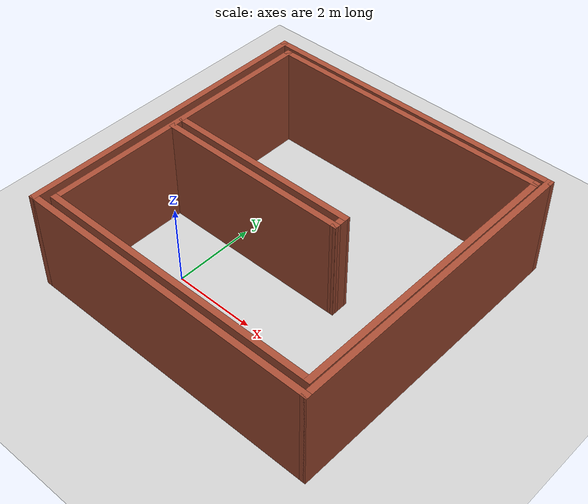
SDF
<sdf version="1.7">
 <world name="default">
  <light name="sun" type="directional">
   <pose>0 0 10 0 -0 0</pose>
   <diffuse>0.8 0.8 0.8 1</diffuse>
   <specular>0.2 0.2 0.2 1</specular>
   <attenuation>
    <range>1000</range>
    <constant>0.9</constant>
    <linear>0.01</linear>
    <quadratic>0.001</quadratic>
   </attenuation>
   <direction>-0.5 0.1 -0.9</direction>
   <spot><inner_angle>0</inner_angle><outer_angle>0</outer_angle><falloff>0</falloff></spot>
  </light>
  <model name="ground_plane">
   <static>1</static>
   <link name="link">
    <collision name="collision">
     <geometry><plane><normal>0 0 1</normal><size>100 100</size></plane></geometry>
     <surface><friction><ode><mu>100</mu><mu2>50</mu2></ode></friction></surface>
    </collision>
    <visual name="visual">
     <cast_shadows>0</cast_shadows>
     <geometry><plane><normal>0 0 1</normal><size>100 100</size></plane></geometry>
     <material>
      <script><uri>file://media/materials/scripts/gazebo.material</uri><name>Gazebo/Grey</name></script>
     </material>
    </visual>
   </link>
  </model>
  <gravity>0 0 -9.8</gravity>
  <magnetic_field>6e-06 2.3e-05 -4.2e-05</magnetic_field>
  <atmosphere type="adiabatic"/>
  <physics name="default_physics" default="0" type="ode">
   <max_step_size>0.001</max_step_size>
   <real_time_factor>1</real_time_factor>
   <real_time_update_rate>1000</real_time_update_rate>
  </physics>
  <scene><ambient>0.4 0.4 0.4 1</ambient><background>0.7 0.7 0.7 1</background><shadows>1</shadows></scene>
  <spherical_coordinates>
   <surface_model>EARTH_WGS84</surface_model>
   <latitude_deg>0</latitude_deg>
   <longitude_deg>0</longitude_deg>
   <elevation>0</elevation>
   <heading_deg>0</heading_deg>
  </spherical_coordinates>
  <model name="room_mini">
   <pose>1.70659 1.72035 0 0 -0 0</pose>
   <link name="Wall_0">
    <collision name="Wall_0_Collision">
     <geometry><box><size>7 0.15 2.5</size></box></geometry>
     <pose>0 0 1.25 0 -0 0</pose>
    </collision>
    <visual name="Wall_0_Visual">
     <pose>0 0 1.25 0 -0 0</pose>
     <geometry><box><size>7 0.15 2.5</size></box></geometry>
     <material>
      <script><uri>file://media/materials/scripts/gazebo.material</uri><name>Gazebo/Bricks</name></script>
      <ambient>1 1 1 1</ambient>
     </material>
     <meta><layer>0</layer></meta>
    </visual>
    <pose>0.076061 -3.39774 0 0 -0 0</pose>
   </link>
   <link name="Wall_13">
    <collision name="Wall_13_Collision">
     <geometry><box><size>4.75 0.15 2.5</size></box></geometry>
     <pose>0 0 1.25 0 -0 0</pose>
    </collision>
    <visual name="Wall_13_Visual">
     <pose>0 0 1.25 0 -0 0</pose>
     <geometry><box><size>4.75 0.15 2.5</size></box></geometry>
     <material>
      <script><uri>file://media/materials/scripts/gazebo.material</uri><name>Gazebo/Bricks</name></script>
      <ambient>1 1 1 1</ambient>
     </material>
     <meta><layer>0</layer></meta>
    </visual>
    <pose>-0.985198 -0.23 0 0 -0 0</pose>
   </link>
   <link name="Wall_16">
    <collision name="Wall_16_Collision">
     <geometry><box><size>0.441128 0.15 2.5</size></box></geometry>
     <pose>0 0 1.25 0 -0 0</pose>
    </collision>
    <visual name="Wall_16_Visual">
     <pose>0 0 1.25 0 -0 0</pose>
     <geometry><box><size>0.441128 0.15 2.5</size></box></geometry>
     <material>
      <script><uri>file://media/materials/scripts/gazebo.material</uri><name>Gazebo/Bricks</name></script>
      <ambient>1 1 1 1</ambient>
     </material>
     <meta><layer>0</layer></meta>
    </visual>
    <pose>1.31175 -0.084468 0 0 -0 -1.54982</pose>
   </link>
   <link name="Wall_2">
    <collision name="Wall_2_Collision">
     <geometry><box><size>7 0.15 2.5</size></box></geometry>
     <pose>0 0 1.25 0 -0 0</pose>
    </collision>
    <visual name="Wall_2_Visual">
     <pose>0 0 1.25 0 -0 0</pose>
     <geometry><box><size>7 0.15 2.5</size></box></geometry>
     <material>
      <script><uri>file://media/materials/scripts/gazebo.material</uri><name>Gazebo/Bricks</name></script>
      <ambient>1 1 1 1</ambient>
     </material>
     <meta><layer>0</layer></meta>
    </visual>
    <pose>3.50116 0.027424 0 0 -0 1.57077</pose>
   </link>
   <link name="Wall_20">
    <collision name="Wall_20_Collision">
     <geometry><box><size>7.5 0.15 2.5</size></box></geometry>
     <pose>0 0 1.25 0 -0 0</pose>
    </collision>
    <visual name="Wall_20_Visual">
     <pose>0 0 1.25 0 -0 0</pose>
     <geometry><box><size>7.5 0.15 2.5</size></box></geometry>
     <material>
      <script><uri>file://media/materials/scripts/gazebo.material</uri><name>Gazebo/Bricks</name></script>
      <ambient>1 1 1 1</ambient>
     </material>
     <meta><layer>0</layer></meta>
    </visual>
    <pose>-3.675 0 0 0 -0 -1.5708</pose>
   </link>
   <link name="Wall_23">
    <collision name="Wall_23_Collision">
     <geometry><box><size>7.5 0.15 2.5</size></box></geometry>
     <pose>0 0 1.25 0 -0 0</pose>
    </collision>
    <visual name="Wall_23_Visual">
     <pose>0 0 1.25 0 -0 0</pose>
     <geometry><box><size>7.5 0.15 2.5</size></box></geometry>
     <material>
      <script><uri>file://media/materials/scripts/gazebo.material</uri><name>Gazebo/Bricks</name></script>
      <ambient>1 1 1 1</ambient>
     </material>
     <meta><layer>0</layer></meta>
    </visual>
    <pose>0 -3.675 0 0 -0 0</pose>
   </link>
   <link name="Wall_24">
    <collision name="Wall_24_Collision">
     <geometry><box><size>7.5 0.15 2.5</size></box></geometry>
     <pose>0 0 1.25 0 -0 0</pose>
    </collision>
    <visual name="Wall_24_Visual">
     <pose>0 0 1.25 0 -0 0</pose>
     <geometry><box><size>7.5 0.15 2.5</size></box></geometry>
     <material>
      <script><uri>file://media/materials/scripts/gazebo.material</uri><name>Gazebo/Bricks</name></script>
      <ambient>1 1 1 1</ambient>
     </material>
     <meta><layer>0</layer></meta>
    </visual>
    <pose>3.675 0 0 0 -0 1.5708</pose>
   </link>
   <link name="Wall_25">
    <collision name="Wall_25_Collision">
     <geometry><box><size>7.5 0.15 2.5</size></box></geometry>
     <pose>0 0 1.25 0 -0 0</pose>
    </collision>
    <visual name="Wall_25_Visual">
     <pose>0 0 1.25 0 -0 0</pose>
     <geometry><box><size>7.5 0.15 2.5</size></box></geometry>
     <material>
      <script><uri>file://media/materials/scripts/gazebo.material</uri><name>Gazebo/Bricks</name></script>
      <ambient>1 1 1 1</ambient>
     </material>
     <meta><layer>0</layer></meta>
    </visual>
    <pose>0 3.675 0 0 -0 3.14159</pose>
   </link>
   <link name="Wall_3">
    <collision name="Wall_3_Collision">
     <geometry><box><size>7 0.15 2.5</size></box></geometry>
     <pose>0 0 1.25 0 -0 0</pose>
    </collision>
    <visual name="Wall_3_Visual">
     <pose>0 0 1.25 0 -0 0</pose>
     <geometry><box><size>7 0.15 2.5</size></box></geometry>
     <material>
      <script><uri>file://media/materials/scripts/gazebo.material</uri><name>Gazebo/Bricks</name></script>
      <ambient>1 1 1 1</ambient>
     </material>
     <meta><layer>0</layer></meta>
    </visual>
    <pose>0.076264 3.45259 0 0 -0 3.14159</pose>
   </link>
   <link name="Wall_4">
    <collision name="Wall_4_Collision">
     <geometry><box><size>7 0.15 2.5</size></box></geometry>
     <pose>0 0 1.25 0 -0 0</pose>
    </collision>
    <visual name="Wall_4_Visual">
     <pose>0 0 1.25 0 -0 0</pose>
     <geometry><box><size>7 0.15 2.5</size></box></geometry>
     <material>
      <script><uri>file://media/materials/scripts/gazebo.material</uri><name>Gazebo/Bricks</name></script>
      <ambient>1 1 1 1</ambient>
     </material>
     <meta><layer>0</layer></meta>
    </visual>
    <pose>-3.34884 0.027424 0 0 -0 -1.57083</pose>
   </link>
   <link name="Wall_6">
    <collision name="Wall_6_Collision">
     <geometry><box><size>4.75 0.15 2.5</size></box></geometry>
     <pose>0 0 1.25 0 -0 0</pose>
    </collision>
    <visual name="Wall_6_Visual">
     <pose>0 0 1.25 0 -0 0</pose>
     <geometry><box><size>4.75 0.15 2.5</size></box></geometry>
     <material>
      <script><uri>file://media/materials/scripts/gazebo.material</uri><name>Gazebo/Bricks</name></script>
      <ambient>1 1 1 1</ambient>
     </material>
     <meta><layer>0</layer></meta>
    </visual>
    <pose>-0.991303 0.061064 0 0 -0 0</pose>
   </link>
   <static>1</static>
  </model>
 </world>
</sdf>
